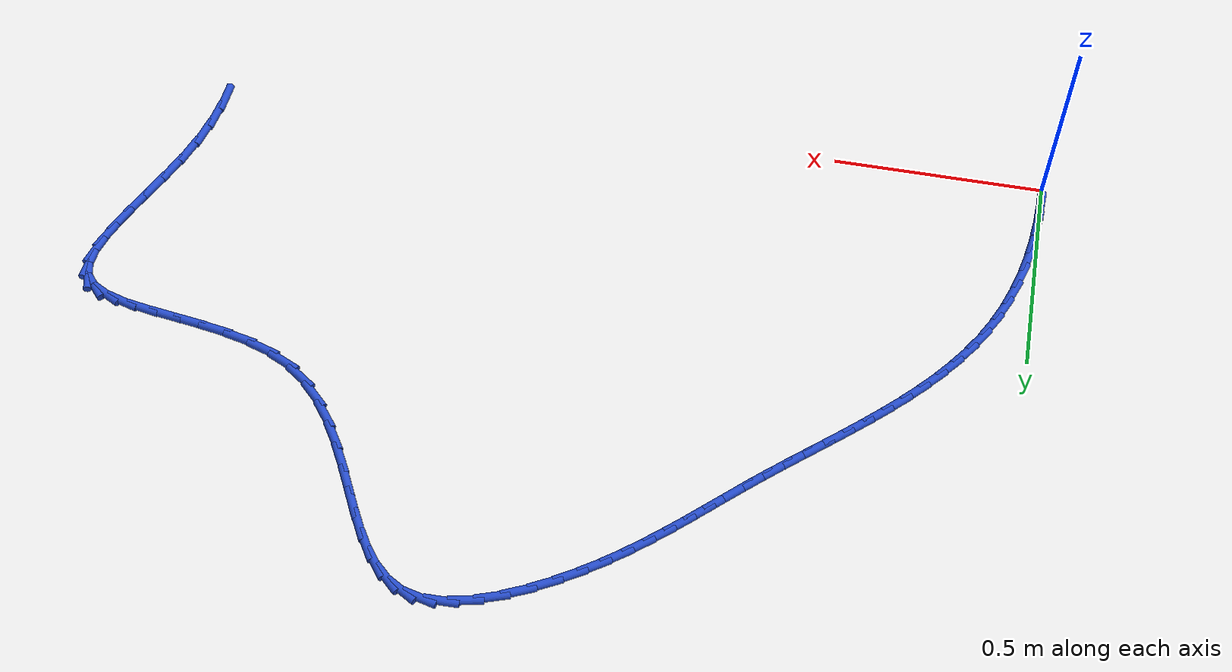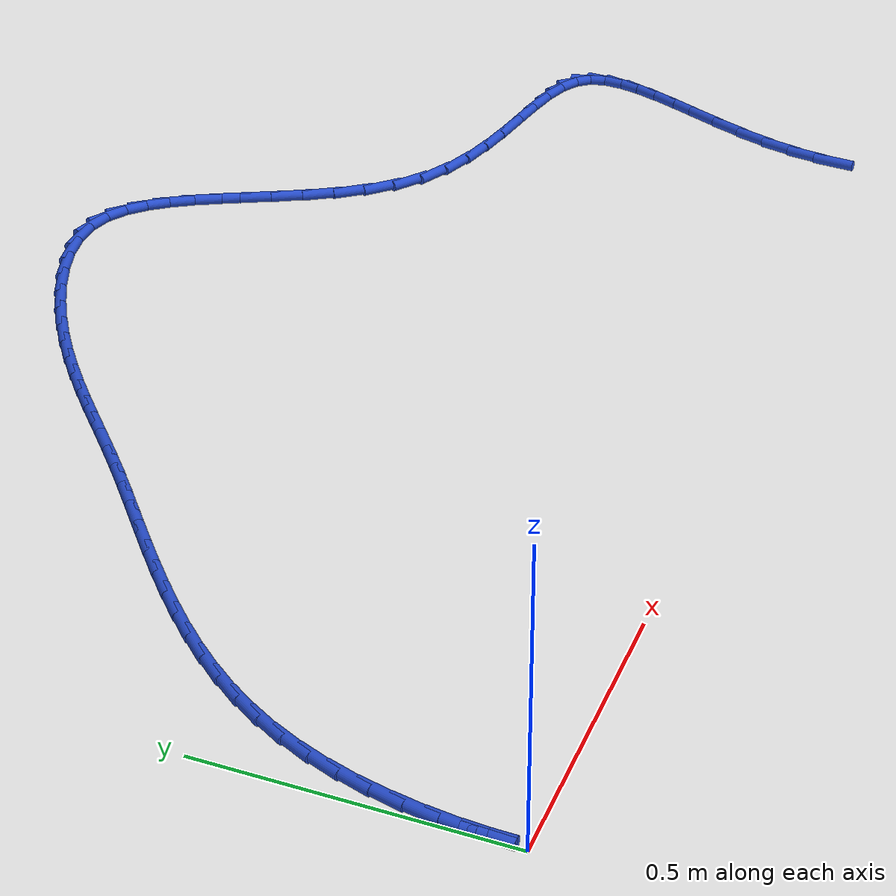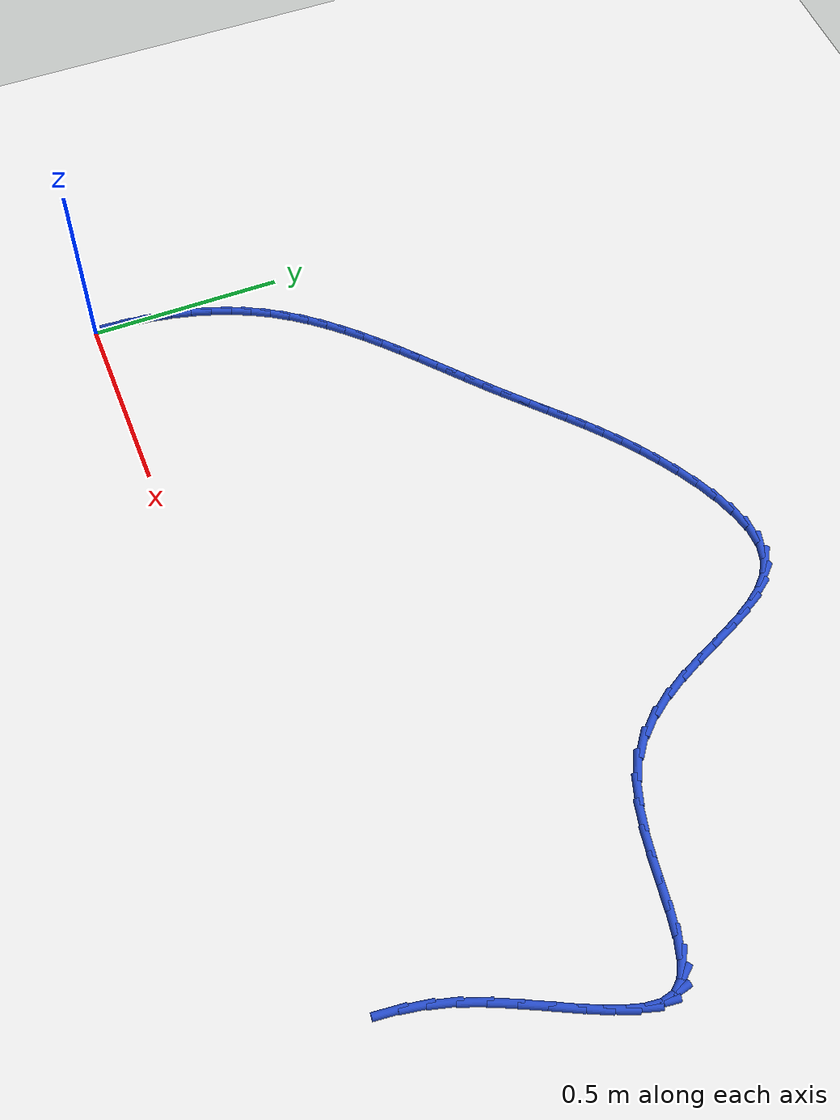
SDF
<sdf version="1.6">
 <world name="default">
  <model name="ground_plane">
   <static>1</static>
   <link name="link">
    <collision name="collision">
     <geometry><plane><normal>0 0 1</normal><size>100 100</size></plane></geometry>
     <surface><friction><ode><mu>100</mu><mu2>50</mu2></ode></friction></surface>
    </collision>
    <visual name="visual">
     <cast_shadows>0</cast_shadows>
     <geometry><plane><normal>0 0 1</normal><size>100 100</size></plane></geometry>
     <material>
      <script><uri>file://media/materials/scripts/gazebo.material</uri><name>Gazebo/WhiteGlow</name></script>
     </material>
    </visual>
   </link>
  </model>
  <model name="line">
   <link name="link_1">
    <pose>0.0010108240448873035 0.0549459109594063 0.01 0 1.57 1.5022052793923284</pose>
    <collision name="collision">
     <geometry><cylinder><radius>0.01</radius><length>0.08</length></cylinder></geometry>
    </collision>
    <visual name="visual">
     <material>
      <script><name>Gazebo/Blue</name><uri>file://media/materials/scripts/gazebo.material</uri></script>
     </material>
     <geometry><cylinder><radius>0.01</radius><length>0.08</length></cylinder></geometry>
    </visual>
   </link>
   <link name="link_2">
    <pose>0.004761709251758233 0.10954488852184022 0.01 0 1.57 1.449477267418357</pose>
    <collision name="collision">
     <geometry><cylinder><radius>0.01</radius><length>0.08</length></cylinder></geometry>
    </collision>
    <visual name="visual">
     <material>
      <script><name>Gazebo/Blue</name><uri>file://media/materials/scripts/gazebo.material</uri></script>
     </material>
     <geometry><cylinder><radius>0.01</radius><length>0.08</length></cylinder></geometry>
    </visual>
   </link>
   <link name="link_3">
    <pose>0.011348165417761865 0.16356863882498898 0.01 0 1.57 1.3938339269967355</pose>
    <collision name="collision">
     <geometry><cylinder><radius>0.01</radius><length>0.08</length></cylinder></geometry>
    </collision>
    <visual name="visual">
     <material>
      <script><name>Gazebo/Blue</name><uri>file://media/materials/scripts/gazebo.material</uri></script>
     </material>
     <geometry><cylinder><radius>0.01</radius><length>0.08</length></cylinder></geometry>
    </visual>
   </link>
   <link name="link_4">
    <pose>0.020865702340047244 0.2167888680065397 0.01 0 1.57 1.3349088024427782</pose>
    <collision name="collision">
     <geometry><cylinder><radius>0.01</radius><length>0.08</length></cylinder></geometry>
    </collision>
    <visual name="visual">
     <material>
      <script><name>Gazebo/Blue</name><uri>file://media/materials/scripts/gazebo.material</uri></script>
     </material>
     <geometry><cylinder><radius>0.01</radius><length>0.08</length></cylinder></geometry>
    </visual>
   </link>
   <link name="link_5">
    <pose>0.03340982981576346 0.2689772822041798 0.01 0 1.57 1.2723695040713148</pose>
    <collision name="collision">
     <geometry><cylinder><radius>0.01</radius><length>0.08</length></cylinder></geometry>
    </collision>
    <visual name="visual">
     <material>
      <script><name>Gazebo/Blue</name><uri>file://media/materials/scripts/gazebo.material</uri></script>
     </material>
     <geometry><cylinder><radius>0.01</radius><length>0.08</length></cylinder></geometry>
    </visual>
   </link>
   <link name="link_6">
    <pose>0.049076057642059565 0.3199055875555965 0.01 0 1.57 1.205941755668976</pose>
    <collision name="collision">
     <geometry><cylinder><radius>0.01</radius><length>0.08</length></cylinder></geometry>
    </collision>
    <visual name="visual">
     <material>
      <script><name>Gazebo/Blue</name><uri>file://media/materials/scripts/gazebo.material</uri></script>
     </material>
     <geometry><cylinder><radius>0.01</radius><length>0.08</length></cylinder></geometry>
    </visual>
   </link>
   <link name="link_7">
    <pose>0.06795989561608459 0.3693454901984769 0.01 0 1.57 1.1354410207944292</pose>
    <collision name="collision">
     <geometry><cylinder><radius>0.01</radius><length>0.08</length></cylinder></geometry>
    </collision>
    <visual name="visual">
     <material>
      <script><name>Gazebo/Blue</name><uri>file://media/materials/scripts/gazebo.material</uri></script>
     </material>
     <geometry><cylinder><radius>0.01</radius><length>0.08</length></cylinder></geometry>
    </visual>
   </link>
   <link name="link_8">
    <pose>0.09015685353498762 0.41706869627050835 0.01 0 1.57 1.0613098449842502</pose>
    <collision name="collision">
     <geometry><cylinder><radius>0.01</radius><length>0.08</length></cylinder></geometry>
    </collision>
    <visual name="visual">
     <material>
      <script><name>Gazebo/Blue</name><uri>file://media/materials/scripts/gazebo.material</uri></script>
     </material>
     <geometry><cylinder><radius>0.01</radius><length>0.08</length></cylinder></geometry>
    </visual>
   </link>
   <link name="link_9">
    <pose>0.11574240478994677 0.46286474245704146 0.01 0 1.57 0.9902246973115312</pose>
    <collision name="collision">
     <geometry><cylinder><radius>0.01</radius><length>0.08</length></cylinder></geometry>
    </collision>
    <visual name="visual">
     <material>
      <script><name>Gazebo/Blue</name><uri>file://media/materials/scripts/gazebo.material</uri></script>
     </material>
     <geometry><cylinder><radius>0.01</radius><length>0.08</length></cylinder></geometry>
    </visual>
   </link>
   <link name="link_10">
    <pose>0.1445329476938466 0.506753718294999 0.01 0 1.57 0.9271506494640671</pose>
    <collision name="collision">
     <geometry><cylinder><radius>0.01</radius><length>0.08</length></cylinder></geometry>
    </collision>
    <visual name="visual">
     <material>
      <script><name>Gazebo/Blue</name><uri>file://media/materials/scripts/gazebo.material</uri></script>
     </material>
     <geometry><cylinder><radius>0.01</radius><length>0.08</length></cylinder></geometry>
    </visual>
   </link>
   <link name="link_11">
    <pose>0.1761644163634784 0.5489163097603373 0.01 0 1.57 0.8723713835519302</pose>
    <collision name="collision">
     <geometry><cylinder><radius>0.01</radius><length>0.08</length></cylinder></geometry>
    </collision>
    <visual name="visual">
     <material>
      <script><name>Gazebo/Blue</name><uri>file://media/materials/scripts/gazebo.material</uri></script>
     </material>
     <geometry><cylinder><radius>0.01</radius><length>0.08</length></cylinder></geometry>
    </visual>
   </link>
   <link name="link_12">
    <pose>0.21026907791694047 0.5895364661185993 0.01 0 1.57 0.8258091247689291</pose>
    <collision name="collision">
     <geometry><cylinder><radius>0.01</radius><length>0.08</length></cylinder></geometry>
    </collision>
    <visual name="visual">
     <material>
      <script><name>Gazebo/Blue</name><uri>file://media/materials/scripts/gazebo.material</uri></script>
     </material>
     <geometry><cylinder><radius>0.01</radius><length>0.08</length></cylinder></geometry>
    </visual>
   </link>
   <link name="link_13">
    <pose>0.24647919947233096 0.6287981366353289 0.01 0 1.57 0.7872300190082603</pose>
    <collision name="collision">
     <geometry><cylinder><radius>0.01</radius><length>0.08</length></cylinder></geometry>
    </collision>
    <visual name="visual">
     <material>
      <script><name>Gazebo/Blue</name><uri>file://media/materials/scripts/gazebo.material</uri></script>
     </material>
     <geometry><cylinder><radius>0.01</radius><length>0.08</length></cylinder></geometry>
    </visual>
   </link>
   <link name="link_14">
    <pose>0.2844270481477484 0.6668852705760694 0.01 0 1.57 0.7563372634830966</pose>
    <collision name="collision">
     <geometry><cylinder><radius>0.01</radius><length>0.08</length></cylinder></geometry>
    </collision>
    <visual name="visual">
     <material>
      <script><name>Gazebo/Blue</name><uri>file://media/materials/scripts/gazebo.material</uri></script>
     </material>
     <geometry><cylinder><radius>0.01</radius><length>0.08</length></cylinder></geometry>
    </visual>
   </link>
   <link name="link_15">
    <pose>0.32374489106129073 0.703981817206364 0.01 0 1.57 0.7328399677386845</pose>
    <collision name="collision">
     <geometry><cylinder><radius>0.01</radius><length>0.08</length></cylinder></geometry>
    </collision>
    <visual name="visual">
     <material>
      <script><name>Gazebo/Blue</name><uri>file://media/materials/scripts/gazebo.material</uri></script>
     </material>
     <geometry><cylinder><radius>0.01</radius><length>0.08</length></cylinder></geometry>
    </visual>
   </link>
   <link name="link_16">
    <pose>0.3640649953310566 0.7402717257917565 0.01 0 1.57 0.716500793619048</pose>
    <collision name="collision">
     <geometry><cylinder><radius>0.01</radius><length>0.08</length></cylinder></geometry>
    </collision>
    <visual name="visual">
     <material>
      <script><name>Gazebo/Blue</name><uri>file://media/materials/scripts/gazebo.material</uri></script>
     </material>
     <geometry><cylinder><radius>0.01</radius><length>0.08</length></cylinder></geometry>
    </visual>
   </link>
   <link name="link_17">
    <pose>0.4050196280751439 0.7759389455977901 0.01 0 1.57 0.7071676263991836</pose>
    <collision name="collision">
     <geometry><cylinder><radius>0.01</radius><length>0.08</length></cylinder></geometry>
    </collision>
    <visual name="visual">
     <material>
      <script><name>Gazebo/Blue</name><uri>file://media/materials/scripts/gazebo.material</uri></script>
     </material>
     <geometry><cylinder><radius>0.01</radius><length>0.08</length></cylinder></geometry>
    </visual>
   </link>
   <link name="link_18">
    <pose>0.446241056411651 0.8111674258900079 0.01 0 1.57 0.7047943213423088</pose>
    <collision name="collision">
     <geometry><cylinder><radius>0.01</radius><length>0.08</length></cylinder></geometry>
    </collision>
    <visual name="visual">
     <material>
      <script><name>Gazebo/Blue</name><uri>file://media/materials/scripts/gazebo.material</uri></script>
     </material>
     <geometry><cylinder><radius>0.01</radius><length>0.08</length></cylinder></geometry>
    </visual>
   </link>
   <link name="link_19">
    <pose>0.48736154745867655 0.8461411159339542 0.01 0 1.57 0.7094542777418011</pose>
    <collision name="collision">
     <geometry><cylinder><radius>0.01</radius><length>0.08</length></cylinder></geometry>
    </collision>
    <visual name="visual">
     <material>
      <script><name>Gazebo/Blue</name><uri>file://media/materials/scripts/gazebo.material</uri></script>
     </material>
     <geometry><cylinder><radius>0.01</radius><length>0.08</length></cylinder></geometry>
    </visual>
   </link>
   <link name="link_20">
    <pose>0.5280133683343184 0.8810439649951719 0.01 0 1.57 0.7213397730226309</pose>
    <collision name="collision">
     <geometry><cylinder><radius>0.01</radius><length>0.08</length></cylinder></geometry>
    </collision>
    <visual name="visual">
     <material>
      <script><name>Gazebo/Blue</name><uri>file://media/materials/scripts/gazebo.material</uri></script>
     </material>
     <geometry><cylinder><radius>0.01</radius><length>0.08</length></cylinder></geometry>
    </visual>
   </link>
   <link name="link_21">
    <pose>0.5678292780076015 0.9160597116324382 0.01 0 1.57 0.7368221955592761</pose>
    <collision name="collision">
     <geometry><cylinder><radius>0.01</radius><length>0.08</length></cylinder></geometry>
    </collision>
    <visual name="visual">
     <material>
      <script><name>Gazebo/Blue</name><uri>file://media/materials/scripts/gazebo.material</uri></script>
     </material>
     <geometry><cylinder><radius>0.01</radius><length>0.08</length></cylinder></geometry>
    </visual>
   </link>
   <link name="link_22">
    <pose>0.6066515428900895 0.9512823423407987 0.01 0 1.57 0.7458170189217816</pose>
    <collision name="collision">
     <geometry><cylinder><radius>0.01</radius><length>0.08</length></cylinder></geometry>
    </collision>
    <visual name="visual">
     <material>
      <script><name>Gazebo/Blue</name><uri>file://media/materials/scripts/gazebo.material</uri></script>
     </material>
     <geometry><cylinder><radius>0.01</radius><length>0.08</length></cylinder></geometry>
    </visual>
   </link>
   <link name="link_23">
    <pose>0.6448568355704528 0.9865769063676033 0.01 0 1.57 0.7464607491922605</pose>
    <collision name="collision">
     <geometry><cylinder><radius>0.01</radius><length>0.08</length></cylinder></geometry>
    </collision>
    <visual name="visual">
     <material>
      <script><name>Gazebo/Blue</name><uri>file://media/materials/scripts/gazebo.material</uri></script>
     </material>
     <geometry><cylinder><radius>0.01</radius><length>0.08</length></cylinder></geometry>
    </visual>
   </link>
   <link name="link_24">
    <pose>0.682905803055435 1.0217724786901177 0.01 0 1.57 0.7386570811903604</pose>
    <collision name="collision">
     <geometry><cylinder><radius>0.01</radius><length>0.08</length></cylinder></geometry>
    </collision>
    <visual name="visual">
     <material>
      <script><name>Gazebo/Blue</name><uri>file://media/materials/scripts/gazebo.material</uri></script>
     </material>
     <geometry><cylinder><radius>0.01</radius><length>0.08</length></cylinder></geometry>
    </visual>
   </link>
   <link name="link_25">
    <pose>0.7212590923517799 1.0566981342856065 0.01 0 1.57 0.7225293456745581</pose>
    <collision name="collision">
     <geometry><cylinder><radius>0.01</radius><length>0.08</length></cylinder></geometry>
    </collision>
    <visual name="visual">
     <material>
      <script><name>Gazebo/Blue</name><uri>file://media/materials/scripts/gazebo.material</uri></script>
     </material>
     <geometry><cylinder><radius>0.01</radius><length>0.08</length></cylinder></geometry>
    </visual>
   </link>
   <link name="link_26">
    <pose>0.7603773504662302 1.0911829481313353 0.01 0 1.57 0.6984300620595036</pose>
    <collision name="collision">
     <geometry><cylinder><radius>0.01</radius><length>0.08</length></cylinder></geometry>
    </collision>
    <visual name="visual">
     <material>
      <script><name>Gazebo/Blue</name><uri>file://media/materials/scripts/gazebo.material</uri></script>
     </material>
     <geometry><cylinder><radius>0.01</radius><length>0.08</length></cylinder></geometry>
    </visual>
   </link>
   <link name="link_27">
    <pose>0.8007212244055302 1.1250559952045691 0.01 0 1.57 0.6669493440624943</pose>
    <collision name="collision">
     <geometry><cylinder><radius>0.01</radius><length>0.08</length></cylinder></geometry>
    </collision>
    <visual name="visual">
     <material>
      <script><name>Gazebo/Blue</name><uri>file://media/materials/scripts/gazebo.material</uri></script>
     </material>
     <geometry><cylinder><radius>0.01</radius><length>0.08</length></cylinder></geometry>
    </visual>
   </link>
   <link name="link_28">
    <pose>0.8427513611764228 1.158146350482573 0.01 0 1.57 0.6289143823704977</pose>
    <collision name="collision">
     <geometry><cylinder><radius>0.01</radius><length>0.08</length></cylinder></geometry>
    </collision>
    <visual name="visual">
     <material>
      <script><name>Gazebo/Blue</name><uri>file://media/materials/scripts/gazebo.material</uri></script>
     </material>
     <geometry><cylinder><radius>0.01</radius><length>0.08</length></cylinder></geometry>
    </visual>
   </link>
   <link name="link_29">
    <pose>0.8869284077856517 1.1902830889426124 0.01 0 1.57 0.5853708190399936</pose>
    <collision name="collision">
     <geometry><cylinder><radius>0.01</radius><length>0.08</length></cylinder></geometry>
    </collision>
    <visual name="visual">
     <material>
      <script><name>Gazebo/Blue</name><uri>file://media/materials/scripts/gazebo.material</uri></script>
     </material>
     <geometry><cylinder><radius>0.01</radius><length>0.08</length></cylinder></geometry>
    </visual>
   </link>
   <link name="link_30">
    <pose>0.9337130112399603 1.2212952855619525 0.01 0 1.57 0.537498812886988</pose>
    <collision name="collision">
     <geometry><cylinder><radius>0.01</radius><length>0.08</length></cylinder></geometry>
    </collision>
    <visual name="visual">
     <material>
      <script><name>Gazebo/Blue</name><uri>file://media/materials/scripts/gazebo.material</uri></script>
     </material>
     <geometry><cylinder><radius>0.01</radius><length>0.08</length></cylinder></geometry>
    </visual>
   </link>
   <link name="link_31">
    <pose>0.9835530021196068 1.2510016546847316 0.01 0 1.57 0.4833694559610374</pose>
    <collision name="collision">
     <geometry><cylinder><radius>0.01</radius><length>0.08</length></cylinder></geometry>
    </collision>
    <visual name="visual">
     <material>
      <script><name>Gazebo/Blue</name><uri>file://media/materials/scripts/gazebo.material</uri></script>
     </material>
     <geometry><cylinder><radius>0.01</radius><length>0.08</length></cylinder></geometry>
    </visual>
   </link>
   <link name="link_32">
    <pose>1.0361224592673037 1.2785954197748408 0.01 0 1.57 0.415183490230197</pose>
    <collision name="collision">
     <geometry><cylinder><radius>0.01</radius><length>0.08</length></cylinder></geometry>
    </collision>
    <visual name="visual">
     <material>
      <script><name>Gazebo/Blue</name><uri>file://media/materials/scripts/gazebo.material</uri></script>
     </material>
     <geometry><cylinder><radius>0.01</radius><length>0.08</length></cylinder></geometry>
    </visual>
   </link>
   <link name="link_33">
    <pose>1.0898933977398046 1.3022980715050083 0.01 0 1.57 0.3245983488699011</pose>
    <collision name="collision">
     <geometry><cylinder><radius>0.01</radius><length>0.08</length></cylinder></geometry>
    </collision>
    <visual name="visual">
     <material>
      <script><name>Gazebo/Blue</name><uri>file://media/materials/scripts/gazebo.material</uri></script>
     </material>
     <geometry><cylinder><radius>0.01</radius><length>0.08</length></cylinder></geometry>
    </visual>
   </link>
   <link name="link_34">
    <pose>1.1432341073414867 1.3202472503977598 0.01 0 1.57 0.1988500874779073</pose>
    <collision name="collision">
     <geometry><cylinder><radius>0.01</radius><length>0.08</length></cylinder></geometry>
    </collision>
    <visual name="visual">
     <material>
      <script><name>Gazebo/Blue</name><uri>file://media/materials/scripts/gazebo.material</uri></script>
     </material>
     <geometry><cylinder><radius>0.01</radius><length>0.08</length></cylinder></geometry>
    </visual>
   </link>
   <link name="link_35">
    <pose>1.1945128778767262 1.3305805969756195 0.01 0 1.57 0.017969119769651622</pose>
    <collision name="collision">
     <geometry><cylinder><radius>0.01</radius><length>0.08</length></cylinder></geometry>
    </collision>
    <visual name="visual">
     <material>
      <script><name>Gazebo/Blue</name><uri>file://media/materials/scripts/gazebo.material</uri></script>
     </material>
     <geometry><cylinder><radius>0.01</radius><length>0.08</length></cylinder></geometry>
    </visual>
   </link>
   <link name="link_36">
    <pose>1.2420979991498984 1.331435751761112 0.01 0 1.57 -0.2406301265532608</pose>
    <collision name="collision">
     <geometry><cylinder><radius>0.01</radius><length>0.08</length></cylinder></geometry>
    </collision>
    <visual name="visual">
     <material>
      <script><name>Gazebo/Blue</name><uri>file://media/materials/scripts/gazebo.material</uri></script>
     </material>
     <geometry><cylinder><radius>0.01</radius><length>0.08</length></cylinder></geometry>
    </visual>
   </link>
   <link name="link_37">
    <pose>1.2844319771622554 1.3210476426094253 0.01 0 1.57 -0.5293358232400482</pose>
    <collision name="collision">
     <geometry><cylinder><radius>0.01</radius><length>0.08</length></cylinder></geometry>
    </collision>
    <visual name="visual">
     <material>
      <script><name>Gazebo/Blue</name><uri>file://media/materials/scripts/gazebo.material</uri></script>
     </material>
     <geometry><cylinder><radius>0.01</radius><length>0.08</length></cylinder></geometry>
    </visual>
   </link>
   <link name="link_38">
    <pose>1.3213356826673583 1.299458045959166 0.01 0 1.57 -0.7640713369873696</pose>
    <collision name="collision">
     <geometry><cylinder><radius>0.01</radius><length>0.08</length></cylinder></geometry>
    </collision>
    <visual name="visual">
     <material>
      <script><name>Gazebo/Blue</name><uri>file://media/materials/scripts/gazebo.material</uri></script>
     </material>
     <geometry><cylinder><radius>0.01</radius><length>0.08</length></cylinder></geometry>
    </visual>
   </link>
   <link name="link_39">
    <pose>1.3538472742662049 1.268304436933968 0.01 0 1.57 -0.9284357862294297</pose>
    <collision name="collision">
     <geometry><cylinder><radius>0.01</radius><length>0.08</length></cylinder></geometry>
    </collision>
    <visual name="visual">
     <material>
      <script><name>Gazebo/Blue</name><uri>file://media/materials/scripts/gazebo.material</uri></script>
     </material>
     <geometry><cylinder><radius>0.01</radius><length>0.08</length></cylinder></geometry>
    </visual>
   </link>
   <link name="link_40">
    <pose>1.3830467553323234 1.229279143458835 0.01 0 1.57 -1.0329086433006016</pose>
    <collision name="collision">
     <geometry><cylinder><radius>0.01</radius><length>0.08</length></cylinder></geometry>
    </collision>
    <visual name="visual">
     <material>
      <script><name>Gazebo/Blue</name><uri>file://media/materials/scripts/gazebo.material</uri></script>
     </material>
     <geometry><cylinder><radius>0.01</radius><length>0.08</length></cylinder></geometry>
    </visual>
   </link>
   <link name="link_41">
    <pose>1.4100141292392454 1.1840744934587717 0.01 0 1.57 -1.0916636704700757</pose>
    <collision name="collision">
     <geometry><cylinder><radius>0.01</radius><length>0.08</length></cylinder></geometry>
    </collision>
    <visual name="visual">
     <material>
      <script><name>Gazebo/Blue</name><uri>file://media/materials/scripts/gazebo.material</uri></script>
     </material>
     <geometry><cylinder><radius>0.01</radius><length>0.08</length></cylinder></geometry>
    </visual>
   </link>
   <link name="link_42">
    <pose>1.4358293993605002 1.1343828148587827 0.01 0 1.57 -1.1147990505419347</pose>
    <collision name="collision">
     <geometry><cylinder><radius>0.01</radius><length>0.08</length></cylinder></geometry>
    </collision>
    <visual name="visual">
     <material>
      <script><name>Gazebo/Blue</name><uri>file://media/materials/scripts/gazebo.material</uri></script>
     </material>
     <geometry><cylinder><radius>0.01</radius><length>0.08</length></cylinder></geometry>
    </visual>
   </link>
   <link name="link_43">
    <pose>1.461572569069618 1.0818964355838723 0.01 0 1.57 -1.107795380917502</pose>
    <collision name="collision">
     <geometry><cylinder><radius>0.01</radius><length>0.08</length></cylinder></geometry>
    </collision>
    <visual name="visual">
     <material>
      <script><name>Gazebo/Blue</name><uri>file://media/materials/scripts/gazebo.material</uri></script>
     </material>
     <geometry><cylinder><radius>0.01</radius><length>0.08</length></cylinder></geometry>
    </visual>
   </link>
   <link name="link_44">
    <pose>1.488323641740128 1.0283076835590441 0.01 0 1.57 -1.0724601751161738</pose>
    <collision name="collision">
     <geometry><cylinder><radius>0.01</radius><length>0.08</length></cylinder></geometry>
    </collision>
    <visual name="visual">
     <material>
      <script><name>Gazebo/Blue</name><uri>file://media/materials/scripts/gazebo.material</uri></script>
     </material>
     <geometry><cylinder><radius>0.01</radius><length>0.08</length></cylinder></geometry>
    </visual>
   </link>
   <link name="link_45">
    <pose>1.5171626207455606 0.9753088867093035 0.01 0 1.57 -1.0078267898354718</pose>
    <collision name="collision">
     <geometry><cylinder><radius>0.01</radius><length>0.08</length></cylinder></geometry>
    </collision>
    <visual name="visual">
     <material>
      <script><name>Gazebo/Blue</name><uri>file://media/materials/scripts/gazebo.material</uri></script>
     </material>
     <geometry><cylinder><radius>0.01</radius><length>0.08</length></cylinder></geometry>
    </visual>
   </link>
   <link name="link_46">
    <pose>1.5491695094594462 0.9245923729596535 0.01 0 1.57 -0.9110877091274001</pose>
    <collision name="collision">
     <geometry><cylinder><radius>0.01</radius><length>0.08</length></cylinder></geometry>
    </collision>
    <visual name="visual">
     <material>
      <script><name>Gazebo/Blue</name><uri>file://media/materials/scripts/gazebo.material</uri></script>
     </material>
     <geometry><cylinder><radius>0.01</radius><length>0.08</length></cylinder></geometry>
    </visual>
   </link>
   <link name="link_47">
    <pose>1.5854243112553137 0.8778504702350994 0.01 0 1.57 -0.7792553817712297</pose>
    <collision name="collision">
     <geometry><cylinder><radius>0.01</radius><length>0.08</length></cylinder></geometry>
    </collision>
    <visual name="visual">
     <material>
      <script><name>Gazebo/Blue</name><uri>file://media/materials/scripts/gazebo.material</uri></script>
     </material>
     <geometry><cylinder><radius>0.01</radius><length>0.08</length></cylinder></geometry>
    </visual>
   </link>
   <link name="link_48">
    <pose>1.6270070295066943 0.8367755064606452 0.01 0 1.57 -0.6124872750445732</pose>
    <collision name="collision">
     <geometry><cylinder><radius>0.01</radius><length>0.08</length></cylinder></geometry>
    </collision>
    <visual name="visual">
     <material>
      <script><name>Gazebo/Blue</name><uri>file://media/materials/scripts/gazebo.material</uri></script>
     </material>
     <geometry><cylinder><radius>0.01</radius><length>0.08</length></cylinder></geometry>
    </visual>
   </link>
   <link name="link_49">
    <pose>1.6749954733802017 0.8030575015443351 0.01 0 1.57 -0.4372053470558105</pose>
    <collision name="collision">
     <geometry><cylinder><radius>0.01</radius><length>0.08</length></cylinder></geometry>
    </collision>
    <visual name="visual">
     <material>
      <script><name>Gazebo/Blue</name><uri>file://media/materials/scripts/gazebo.material</uri></script>
     </material>
     <geometry><cylinder><radius>0.01</radius><length>0.08</length></cylinder></geometry>
    </visual>
   </link>
   <link name="link_50">
    <pose>1.7296414032931275 0.7775175808015371 0.01 0 1.57 -0.30471559002188786</pose>
    <collision name="collision">
     <geometry><cylinder><radius>0.01</radius><length>0.08</length></cylinder></geometry>
    </collision>
    <visual name="visual">
     <material>
      <script><name>Gazebo/Blue</name><uri>file://media/materials/scripts/gazebo.material</uri></script>
     </material>
     <geometry><cylinder><radius>0.01</radius><length>0.08</length></cylinder></geometry>
    </visual>
   </link>
   <link name="link_51">
    <pose>1.7891334277363482 0.758806705190862 0.01 0 1.57 -0.21467783498044857</pose>
    <collision name="collision">
     <geometry><cylinder><radius>0.01</radius><length>0.08</length></cylinder></geometry>
    </collision>
    <visual name="visual">
     <material>
      <script><name>Gazebo/Blue</name><uri>file://media/materials/scripts/gazebo.material</uri></script>
     </material>
     <geometry><cylinder><radius>0.01</radius><length>0.08</length></cylinder></geometry>
    </visual>
   </link>
   <link name="link_52">
    <pose>1.8513433484317807 0.7452425966354532 0.01 0 1.57 -0.15945756182556056</pose>
    <collision name="collision">
     <geometry><cylinder><radius>0.01</radius><length>0.08</length></cylinder></geometry>
    </collision>
    <visual name="visual">
     <material>
      <script><name>Gazebo/Blue</name><uri>file://media/materials/scripts/gazebo.material</uri></script>
     </material>
     <geometry><cylinder><radius>0.01</radius><length>0.08</length></cylinder></geometry>
    </visual>
   </link>
   <link name="link_53">
    <pose>1.9141429671013397 0.7351429770584544 0.01 0 1.57 -0.13494465432601432</pose>
    <collision name="collision">
     <geometry><cylinder><radius>0.01</radius><length>0.08</length></cylinder></geometry>
    </collision>
    <visual name="visual">
     <material>
      <script><name>Gazebo/Blue</name><uri>file://media/materials/scripts/gazebo.material</uri></script>
     </material>
     <geometry><cylinder><radius>0.01</radius><length>0.08</length></cylinder></geometry>
    </visual>
   </link>
   <link name="link_54">
    <pose>1.975404085466942 0.7268255683830094 0.01 0 1.57 -0.1417218173406719</pose>
    <collision name="collision">
     <geometry><cylinder><radius>0.01</radius><length>0.08</length></cylinder></geometry>
    </collision>
    <visual name="visual">
     <material>
      <script><name>Gazebo/Blue</name><uri>file://media/materials/scripts/gazebo.material</uri></script>
     </material>
     <geometry><cylinder><radius>0.01</radius><length>0.08</length></cylinder></geometry>
    </visual>
   </link>
   <link name="link_55">
    <pose>2.0329985052505033 0.7186080925322614 0.01 0 1.57 -0.18697761784973563</pose>
    <collision name="collision">
     <geometry><cylinder><radius>0.01</radius><length>0.08</length></cylinder></geometry>
    </collision>
    <visual name="visual">
     <material>
      <script><name>Gazebo/Blue</name><uri>file://media/materials/scripts/gazebo.material</uri></script>
     </material>
     <geometry><cylinder><radius>0.01</radius><length>0.08</length></cylinder></geometry>
    </visual>
   </link>
   <link name="link_56">
    <pose>2.0847980281739398 0.7088082714293544 0.01 0 1.57 -0.2893962819560187</pose>
    <collision name="collision">
     <geometry><cylinder><radius>0.01</radius><length>0.08</length></cylinder></geometry>
    </collision>
    <visual name="visual">
     <material>
      <script><name>Gazebo/Blue</name><uri>file://media/materials/scripts/gazebo.material</uri></script>
     </material>
     <geometry><cylinder><radius>0.01</radius><length>0.08</length></cylinder></geometry>
    </visual>
   </link>
   <link name="link_57">
    <pose>2.1286744559591684 0.6957438269974323 0.01 0 1.57 -0.4892959162293456</pose>
    <collision name="collision">
     <geometry><cylinder><radius>0.01</radius><length>0.08</length></cylinder></geometry>
    </collision>
    <visual name="visual">
     <material>
      <script><name>Gazebo/Blue</name><uri>file://media/materials/scripts/gazebo.material</uri></script>
     </material>
     <geometry><cylinder><radius>0.01</radius><length>0.08</length></cylinder></geometry>
    </visual>
   </link>
   <link name="link_58">
    <pose>2.162499590328103 0.6777324811596384 0.01 0 1.57 -0.8500113142360899</pose>
    <collision name="collision">
     <geometry><cylinder><radius>0.01</radius><length>0.08</length></cylinder></geometry>
    </collision>
    <visual name="visual">
     <material>
      <script><name>Gazebo/Blue</name><uri>file://media/materials/scripts/gazebo.material</uri></script>
     </material>
     <geometry><cylinder><radius>0.01</radius><length>0.08</length></cylinder></geometry>
    </visual>
   </link>
   <link name="link_59">
    <pose>2.184145244329629 0.6530919628522066 0.01 0 1.57 -1.3249582075143458</pose>
    <collision name="collision">
     <geometry><cylinder><radius>0.01</radius><length>0.08</length></cylinder></geometry>
    </collision>
    <visual name="visual">
     <material>
      <script><name>Gazebo/Blue</name><uri>file://media/materials/scripts/gazebo.material</uri></script>
     </material>
     <geometry><cylinder><radius>0.01</radius><length>0.08</length></cylinder></geometry>
    </visual>
   </link>
   <link name="link_60">
    <pose>2.1922882672988475 0.6206384390985227 0.01 0 1.57 1.4778109682365663</pose>
    <collision name="collision">
     <geometry><cylinder><radius>0.01</radius><length>0.08</length></cylinder></geometry>
    </collision>
    <visual name="visual">
     <material>
      <script><name>Gazebo/Blue</name><uri>file://media/materials/scripts/gazebo.material</uri></script>
     </material>
     <geometry><cylinder><radius>0.01</radius><length>0.08</length></cylinder></geometry>
    </visual>
   </link>
   <link name="link_61">
    <pose>2.1885954796398344 0.5810393170285 0.01 0 1.57 1.2899548030121113</pose>
    <collision name="collision">
     <geometry><cylinder><radius>0.01</radius><length>0.08</length></cylinder></geometry>
    </collision>
    <visual name="visual">
     <material>
      <script><name>Gazebo/Blue</name><uri>file://media/materials/scripts/gazebo.material</uri></script>
     </material>
     <geometry><cylinder><radius>0.01</radius><length>0.08</length></cylinder></geometry>
    </visual>
   </link>
   <link name="link_62">
    <pose>2.1754277095418684 0.5353916985806557 0.01 0 1.57 1.1895691542380549</pose>
    <collision name="collision">
     <geometry><cylinder><radius>0.01</radius><length>0.08</length></cylinder></geometry>
    </collision>
    <visual name="visual">
     <material>
      <script><name>Gazebo/Blue</name><uri>file://media/materials/scripts/gazebo.material</uri></script>
     </material>
     <geometry><cylinder><radius>0.01</radius><length>0.08</length></cylinder></geometry>
    </visual>
   </link>
   <link name="link_63">
    <pose>2.155145785194225 0.4847926856935044 0.01 0 1.57 1.1398587406413696</pose>
    <collision name="collision">
     <geometry><cylinder><radius>0.01</radius><length>0.08</length></cylinder></geometry>
    </collision>
    <visual name="visual">
     <material>
      <script><name>Gazebo/Blue</name><uri>file://media/materials/scripts/gazebo.material</uri></script>
     </material>
     <geometry><cylinder><radius>0.01</radius><length>0.08</length></cylinder></geometry>
    </visual>
   </link>
   <link name="link_64">
    <pose>2.1301105347861826 0.4303393803055638 0.01 0 1.57 1.1237493802541416</pose>
    <collision name="collision">
     <geometry><cylinder><radius>0.01</radius><length>0.08</length></cylinder></geometry>
    </collision>
    <visual name="visual">
     <material>
      <script><name>Gazebo/Blue</name><uri>file://media/materials/scripts/gazebo.material</uri></script>
     </material>
     <geometry><cylinder><radius>0.01</radius><length>0.08</length></cylinder></geometry>
    </visual>
   </link>
   <link name="link_65">
    <pose>2.1026827865070197 0.3731288843553489 0.01 0 1.57 1.134357790968661</pose>
    <collision name="collision">
     <geometry><cylinder><radius>0.01</radius><length>0.08</length></cylinder></geometry>
    </collision>
    <visual name="visual">
     <material>
      <script><name>Gazebo/Blue</name><uri>file://media/materials/scripts/gazebo.material</uri></script>
     </material>
     <geometry><cylinder><radius>0.01</radius><length>0.08</length></cylinder></geometry>
    </visual>
   </link>
   <link name="link_66">
    <pose>2.075223368546012 0.3142582997813757 0.01 0 1.57 1.1707656587022828</pose>
    <collision name="collision">
     <geometry><cylinder><radius>0.01</radius><length>0.08</length></cylinder></geometry>
    </collision>
    <visual name="visual">
     <material>
      <script><name>Gazebo/Blue</name><uri>file://media/materials/scripts/gazebo.material</uri></script>
     </material>
     <geometry><cylinder><radius>0.01</radius><length>0.08</length></cylinder></geometry>
    </visual>
   </link>
   <link name="link_67">
    <pose>2.0500931090924386 0.2548247285221609 0.01 0 1.57 1.236489933139924</pose>
    <collision name="collision">
     <geometry><cylinder><radius>0.01</radius><length>0.08</length></cylinder></geometry>
    </collision>
    <visual name="visual">
     <material>
      <script><name>Gazebo/Blue</name><uri>file://media/materials/scripts/gazebo.material</uri></script>
     </material>
     <geometry><cylinder><radius>0.01</radius><length>0.08</length></cylinder></geometry>
    </visual>
   </link>
   <link name="link_68">
    <pose>2.029631904074261 0.1959170569464824 0.01 0 1.57 1.3229887396434812</pose>
    <collision name="collision">
     <geometry><cylinder><radius>0.01</radius><length>0.08</length></cylinder></geometry>
    </collision>
    <visual name="visual">
     <material>
      <script><name>Gazebo/Blue</name><uri>file://media/materials/scripts/gazebo.material</uri></script>
     </material>
     <geometry><cylinder><radius>0.01</radius><length>0.08</length></cylinder></geometry>
    </visual>
   </link>
   <link name="link_69">
    <pose>2.015021330576708 0.13816955024829486 0.01 0 1.57 1.4077039055124525</pose>
    <collision name="collision">
     <geometry><cylinder><radius>0.01</radius><length>0.08</length></cylinder></geometry>
    </collision>
    <visual name="visual">
     <material>
      <script><name>Gazebo/Blue</name><uri>file://media/materials/scripts/gazebo.material</uri></script>
     </material>
     <geometry><cylinder><radius>0.01</radius><length>0.08</length></cylinder></geometry>
    </visual>
   </link>
   <link name="link_70">
    <pose>2.0057015589291085 0.08153299999062318 0.01 0 1.57 1.4859321556896317</pose>
    <collision name="collision">
     <geometry><cylinder><radius>0.01</radius><length>0.08</length></cylinder></geometry>
    </collision>
    <visual name="visual">
     <material>
      <script><name>Gazebo/Blue</name><uri>file://media/materials/scripts/gazebo.material</uri></script>
     </material>
     <geometry><cylinder><radius>0.01</radius><length>0.08</length></cylinder></geometry>
    </visual>
   </link>
   <link name="link_141">
    <pose>0.0009883508383756075 0.054931723270583245 0.01 0 1.57 1.5528059170815718</pose>
    <collision name="collision">
     <geometry><cylinder><radius>0.01</radius><length>0.08</length></cylinder></geometry>
    </collision>
    <visual name="visual">
     <material>
      <script><name>Gazebo/Blue</name><uri>file://media/materials/scripts/gazebo.material</uri></script>
     </material>
     <geometry><cylinder><radius>0.01</radius><length>0.08</length></cylinder></geometry>
    </visual>
   </link>
  </model>
 </world>
</sdf>
